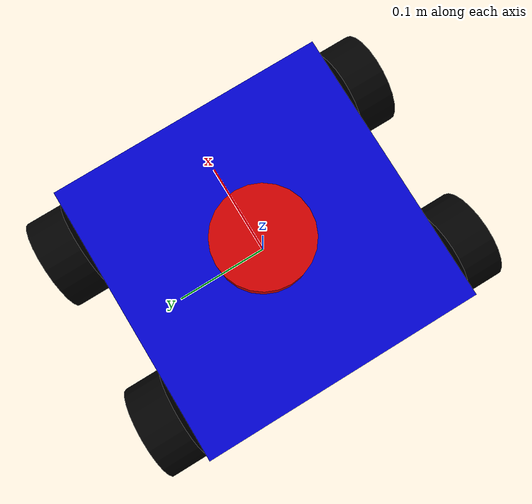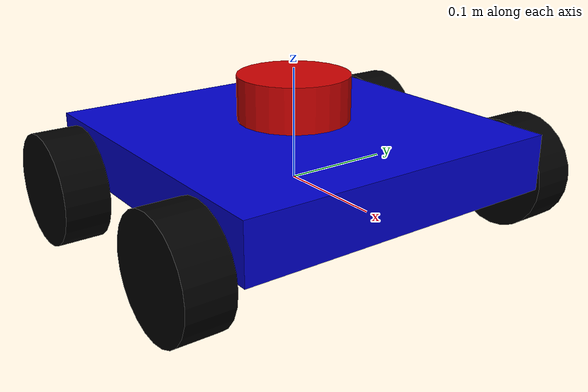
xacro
<?xml version="1.0"?>
<robot xmlns:xacro="http://www.ros.org/wiki/xacro" name="mon_robot">

  <!-- MACROS D'INERTIE -->

  <xacro:macro name="inertial_box" params="mass x y z *origin">
    <inertial>
      <xacro:insert_block name="origin"/>
      <mass value="${mass}" />
      <inertia ixx="${(1/12) * mass * (y*y+z*z)}" ixy="0.0" ixz="0.0"
               iyy="${(1/12) * mass * (x*x+z*z)}" iyz="0.0"
               izz="${(1/12) * mass * (x*x+y*y)}" />
    </inertial>
  </xacro:macro>

  <xacro:macro name="inertial_cylinder" params="mass length radius *origin">
    <inertial>
      <xacro:insert_block name="origin"/>
      <mass value="${mass}" />
      <inertia ixx="${(1/12) * mass * (3*radius*radius + length*length)}" ixy="0.0" ixz="0.0"
               iyy="${(1/12) * mass * (3*radius*radius + length*length)}" iyz="0.0"
               izz="${(1/2) * mass * (radius*radius)}" />
    </inertial>
  </xacro:macro>

  <!-- MATÉRIAUX -->

  <material name="blue"><color rgba="0 0 0.8 1"/></material>
  <material name="black"><color rgba="0 0 0 1"/></material>
  <material name="red"><color rgba="0.8 0 0 1"/></material>

  <!-- BASE_LINK (Point de référence) -->

  <link name="base_link"></link>

  <!-- CHASSIS -->

  <joint name="chassis_joint" type="fixed">
    <parent link="base_link"/>
    <child link="chassis"/>
    <origin xyz="-0.1 0 0"/>
  </joint>

  <link name="chassis">
    <visual>
      <origin xyz="0.1 0 0.025"/>
      <geometry><box size="0.3 0.3 0.05"/></geometry>
      <material name="blue"/>
    </visual>
    <collision>
      <origin xyz="0.1 0 0.025"/>
      <geometry><box size="0.3 0.3 0.05"/></geometry>
    </collision>
    <!-- 🔥 MASSE AUGMENTÉE: 0.5kg → 3.0kg -->
    <xacro:inertial_box mass="3.0" x="0.3" y="0.3" z="0.05">
        <origin xyz="0.1 0 0.025" rpy="0 0 0"/>
    </xacro:inertial_box>
  </link>

  <!-- LIDAR -->

  <link name="laser_frame">
    <visual>
      <origin xyz="0 0 0" rpy="0 0 0"/>
      <geometry>
        <cylinder radius="0.05" length="0.04"/>
      </geometry>
      <material name="red"/>
    </visual>
    <collision>
      <origin xyz="0 0 0" rpy="0 0 0"/>
      <geometry>
        <cylinder radius="0.05" length="0.04"/>
      </geometry>
    </collision>
    <!-- 🔥 MASSE AUGMENTÉE: 0.1kg → 0.5kg -->
    <xacro:inertial_cylinder mass="0.5" length="0.04" radius="0.05">
      <origin xyz="0 0 0" rpy="0 0 0"/>
    </xacro:inertial_cylinder>
  </link>

  <joint name="laser_joint" type="fixed">
    <parent link="chassis"/>
    <child link="laser_frame"/>
    <origin xyz="0.1 0 0.075" rpy="0 0 0"/>
  </joint>

  <!-- ROUES (4 roues motrices) -->

  <xacro:macro name="wheel" params="prefix x_reflect y_reflect">
    <link name="${prefix}_link">
      <visual>
        <geometry><cylinder radius="0.05" length="0.04"/></geometry>
        <material name="black"/>
      </visual>
      <collision>
        <geometry><cylinder radius="0.05" length="0.04"/></geometry>
      </collision>
      <!-- 🔥 MASSE AUGMENTÉE: 0.1kg → 0.3kg -->
      <xacro:inertial_cylinder mass="0.3" length="0.04" radius="0.05">
        <origin xyz="0 0 0" rpy="0 0 0"/>
      </xacro:inertial_cylinder>
    </link>

    <joint name="${prefix}_joint" type="continuous">
      <parent link="base_link"/>
      <child link="${prefix}_link"/>
      <origin xyz="${x_reflect*0.1} ${y_reflect*0.175} 0" rpy="-1.57 0 0"/>
      <axis xyz="0 0 1"/>
      <!-- 🔥 AJOUT DAMPING ET FRICTION DANS LE JOINT -->
      <dynamics damping="0.1" friction="0.1"/>
    </joint>
  </xacro:macro>

  <xacro:wheel prefix="front_left" x_reflect="1" y_reflect="1" />
  <xacro:wheel prefix="front_right" x_reflect="1" y_reflect="-1" />
  <xacro:wheel prefix="rear_left" x_reflect="-1" y_reflect="1" />
  <xacro:wheel prefix="rear_right" x_reflect="-1" y_reflect="-1" />

  <!-- ROS2_CONTROL -->

  <ros2_control name="GazeboSystem" type="system">
    <hardware>
      <plugin>gazebo_ros2_control/GazeboSystem</plugin>
    </hardware>

    <xacro:macro name="control_joint" params="name">
      <joint name="${name}">
        <command_interface name="velocity">
          <param name="min">-10</param>
          <param name="max">10</param>
        </command_interface>
        <state_interface name="position"/>
        <state_interface name="velocity"/>
      </joint>
    </xacro:macro>

    <xacro:control_joint name="front_left_joint"/>
    <xacro:control_joint name="front_right_joint"/>
    <xacro:control_joint name="rear_left_joint"/>
    <xacro:control_joint name="rear_right_joint"/>
  </ros2_control>

  <!-- GAZEBO - MATÉRIAUX ET PROPRIÉTÉS PHYSIQUES -->

  <!-- Chassis Gazebo -->
  <gazebo reference="chassis">
    <material>Gazebo/Blue</material>
    <!-- 🔥 AJOUT PROPRIÉTÉS PHYSIQUES -->
    <mu1>0.3</mu1>
    <mu2>0.3</mu2>
    <kp>1000000.0</kp>
    <kd>100.0</kd>
    <minDepth>0.001</minDepth>
    <maxVel>1.0</maxVel>
  </gazebo>

  <!-- LiDAR Gazebo -->
  <gazebo reference="laser_frame">
    <material>Gazebo/Red</material>
  </gazebo>

  <!-- 🔥 ROUES GAZEBO AVEC FRICTION MAXIMALE -->
  <gazebo reference="front_left_link">
    <material>Gazebo/Black</material>
    <!-- FRICTION ÉLEVÉE pour éviter glissement -->
    <mu1>1.5</mu1>
    <mu2>1.5</mu2>
    <!-- Raideur du contact -->
    <kp>1000000.0</kp>
    <kd>100.0</kd>
    <!-- Profondeur minimale de pénétration -->
    <minDepth>0.001</minDepth>
    <!-- Vitesse maximale de glissement -->
    <maxVel>0.1</maxVel>
    <!-- Surface properties -->
    <fdir1>1 0 0</fdir1>
  </gazebo>

  <gazebo reference="front_right_link">
    <material>Gazebo/Black</material>
    <mu1>1.5</mu1>
    <mu2>1.5</mu2>
    <kp>1000000.0</kp>
    <kd>100.0</kd>
    <minDepth>0.001</minDepth>
    <maxVel>0.1</maxVel>
    <fdir1>1 0 0</fdir1>
  </gazebo>

  <gazebo reference="rear_left_link">
    <material>Gazebo/Black</material>
    <mu1>1.5</mu1>
    <mu2>1.5</mu2>
    <kp>1000000.0</kp>
    <kd>100.0</kd>
    <minDepth>0.001</minDepth>
    <maxVel>0.1</maxVel>
    <fdir1>1 0 0</fdir1>
  </gazebo>

  <gazebo reference="rear_right_link">
    <material>Gazebo/Black</material>
    <mu1>1.5</mu1>
    <mu2>1.5</mu2>
    <kp>1000000.0</kp>
    <kd>100.0</kd>
    <minDepth>0.001</minDepth>
    <maxVel>0.1</maxVel>
    <fdir1>1 0 0</fdir1>
  </gazebo>

  <!-- PLUGIN LIDAR GAZEBO -->

  <gazebo reference="laser_frame">
    <sensor name="laser" type="ray">
      <pose>0 0 0 0 0 0</pose>
      <visualize>true</visualize>
      <update_rate>10</update_rate>
      <ray>
        <scan>
          <horizontal>
            <samples>360</samples>
            <min_angle>-3.14159</min_angle>
            <max_angle>3.14159</max_angle>
          </horizontal>
        </scan>
        <range>
          <min>0.3</min>
          <max>12</max>
        </range>
        <!-- 🔥 AJOUT BRUIT RÉALISTE -->
        <noise>
          <type>gaussian</type>
          <mean>0.0</mean>
          <stddev>0.01</stddev>
        </noise>
      </ray>
      <plugin name="laser_controller" filename="libgazebo_ros_ray_sensor.so">
        <ros>
          <argument>~/out:=scan</argument>
        </ros>
        <output_type>sensor_msgs/LaserScan</output_type>
        <frame_name>laser_frame</frame_name>
      </plugin>
    </sensor>
  </gazebo>

  <!-- PLUGIN ROS2_CONTROL GAZEBO -->

  <gazebo>
    <plugin name="gazebo_ros2_control" filename="libgazebo_ros2_control.so">
      <parameters>$(find my_robot_controller)/config/my_controllers.yaml</parameters>
      <!-- 🔥 AJOUT PARAMÈTRES SIMULATION -->
      <ros>
        <namespace></namespace>
      </ros>
    </plugin>
  </gazebo>

</robot>
